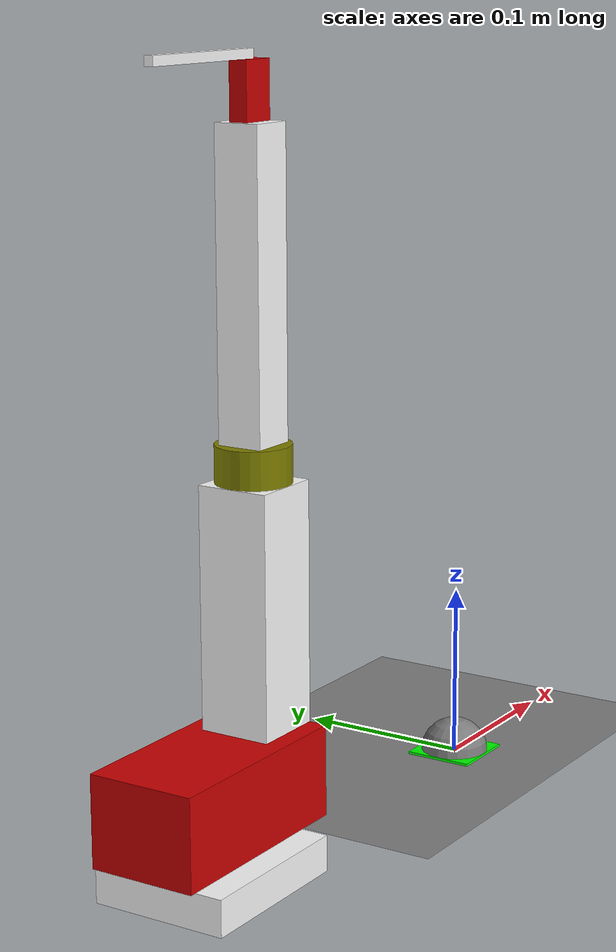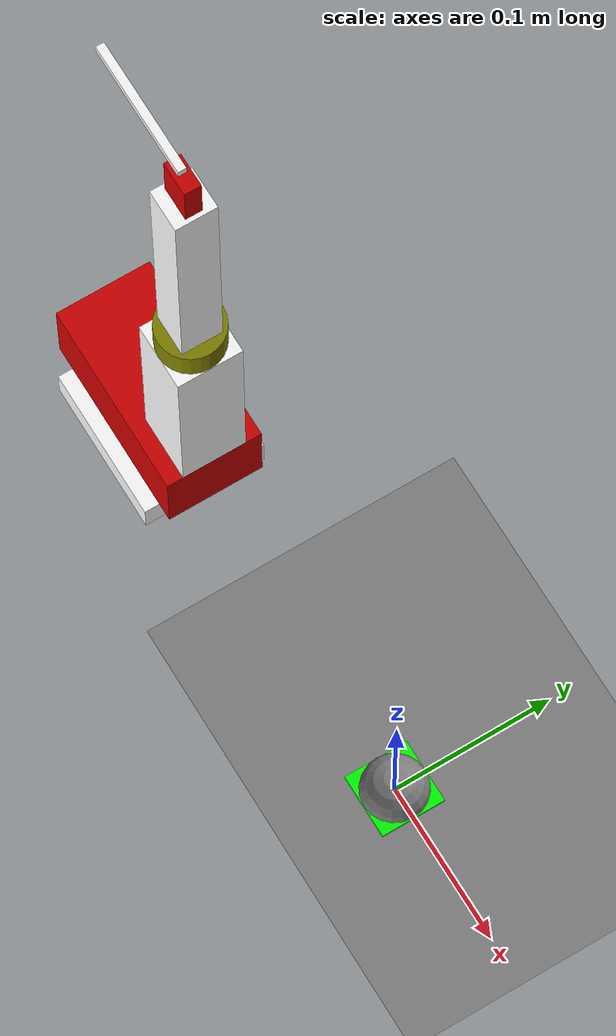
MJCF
<mujoco model="dobot_push">
    <!--default-->
    <default>
        <!--need to define ctrllimited='false' in dobot.xml, because velocity config will override polisition config-->
        <velocity kv="1"/>
        <general gainprm="100" ctrlrange='-1 1' ctrllimited='true'/>
        <geom friction="1 0.1 0.1"/>
    </default>

    <asset>
        <texture builtin="checker" type="2d" height="100" width="100" mark="none" markrgb="1 1 1" name="square_box" rgb1="0. 0. 0." rgb2="1. 1. 1."/>
        <material name="plane" texrepeat="5 5" texture="square_box"/>
    </asset>

    <!--environment-->
    <worldbody>
        <light diffuse=".5 .5 .5" pos="0 0 3" dir="0 0 -1"/>
        <!--cube-->
        <body name="cube" pos="0 0 0">
            <geom name="cube" pos="0 0 0" size="0.02" type="sphere" density='300'/>
            <joint name="free_joint" type="free" damping="0.00001" />
        </body>
        <!--table-->
        <geom type="plane" material="plane" size="0.15 0.15 0.1"/>
        <!--markings for goal -->
        <site type="box" pos="0 0 0" size="0.02 0.02 0.001" rgba="0 255 0 1"></site>
    </worldbody>

    <!--robot-->
    <include file="./abb.xml"/>
</mujoco>

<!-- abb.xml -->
<mujoco model="abb_arm">
    <compiler angle="radian" />
    <size njmax="500" nconmax="100" />
    <contact><exclude body1="bigarm_link" body2="forearm_link"></exclude></contact>
    <worldbody>
        <body name="base_dummy_link" pos="-0.25 0 0">
            <inertial pos="0 0 0" mass="0" diaginertia="0 0 0" />
            <body name="base_link" pos="0 0 0">
                <inertial pos="0 0 0" quat="0.707107 0.707107 0 0" mass=".5" diaginertia="1 1 0.5" />
                <geom size="0.0475 0.0385 0.01" pos="0 0 0.015" type="box" rgba="1 1 1 1" />
                <body name="shoulder_link" pos="0 0 0.03">
                    <inertial pos="0 0 0" quat="0.707107 0.707107 0 0" mass=".1" diaginertia="1 1 0.5" />
                    <joint name="shoulder_joint" pos="0 0 0" axis="0 0 1" limited="true" range="-2.094 2.094" />
                    <geom size="0.06 0.03 0.025" pos="0 0 0.025" type="box" rgba="0.8 0 0 1" />
                    <body name="bigarm_link" pos="0.04 0 0.05">
                        <inertial pos="0 0 0" quat="0.707107 0.707107 0 0" mass=".1" diaginertia="1 1 0.5" />
                        <joint name="bigarm_joint" pos="0 0 0" axis="0 1 0" limited="true" range="-1.48353 1.48353" />
                        <geom size="0.02 0.02 0.065" pos="0 0 0.065" type="box" rgba="1 1 1 1" />
                        <body name="elbow_link" pos="0 0 0.13">
                            <inertial pos="0 0 0" quat="0.707107 0.707107 0 0" mass=".1" diaginertia="1 1 0.5" />
                            <joint name="elbow_joint" pos="0 0 0" axis="0 1 0" limited="true" range="0.785 2.356" />
                            <geom size="0.02 0.01" pos="0 0 0.01" type="cylinder" rgba="0.5 0.5 0 1" />
                            <body name="forearm_link" pos="0 0 0.02">
                                <inertial pos="0 0 0" quat="0.707107 0.707107 0 0" mass=".1" diaginertia="1 1 0.5" />
                                <joint name="forearm_joint" pos="0 0 0" axis="0 0 1" limited="true" range="-2.094 2.094" />
                                <geom size="0.0125 0.0125 0.08" pos="0 0 0.08" type="box" rgba="1 1 1 1" />
                                <body name="hand_link" pos="0 0 0.16">
                                    <inertial pos="0 0 0" quat="0.707107 0.707107 0 0" mass=".1" diaginertia="1 1 0.5" />
                                    <joint name="hand_joint" pos="0 0 0" axis="0 1 0" limited="true" range="-2.094 2.094" />
                                    <geom size="0.01 0.005 0.015" pos="0 0 0.015" type="box" rgba="0.8 0 0 1" />
                                    <body name="endeffector" pos="0 0 0.03">
                                        <inertial pos="0 0 0" quat="0.707107 0.707107 0 0" mass=".1" diaginertia="1 1 0.5" />
                                        <joint name="endeff_joint" pos="0 0 0" axis="0 0 1" limited="true" range="-2.094 2.094" />
                                        <geom size="0.04 0.0025 0.0025" pos="-0.04 0 0.0025" type="box" rgba="1 1 1 1" />
                                    </body>
                                </body>
                            </body>
                        </body>
                    </body>
                </body>
            </body>
        </body>
    </worldbody>
    <actuator>
        <velocity name="shoulder_velocity" joint="shoulder_joint" ctrllimited="false"/>
		<velocity name="bigarm_velocity" joint="bigarm_joint" ctrllimited="false"/>
        <velocity name="elbow_velocity" joint="elbow_joint" ctrllimited="false"/>
        <velocity name="forearm_velocity" joint="forearm_joint" ctrllimited="false"/>
        <velocity name="hand_velocity" joint="hand_joint" ctrllimited="false"/>
        <velocity name="endeff_velocity" joint="endeff_joint" ctrllimited="false"/>
        <general name="shoulder_force" joint="shoulder_joint" />
        <general name="bigarm_force" joint="bigarm_joint" />
        <general name="elbow_force" joint="elbow_joint" />
        <general name="forearm_force" joint="forearm_joint" />
        <general name="hand_force" joint="hand_joint" />
        <general name="endeff_force" joint="endeff_joint" />
	</actuator>
</mujoco>
